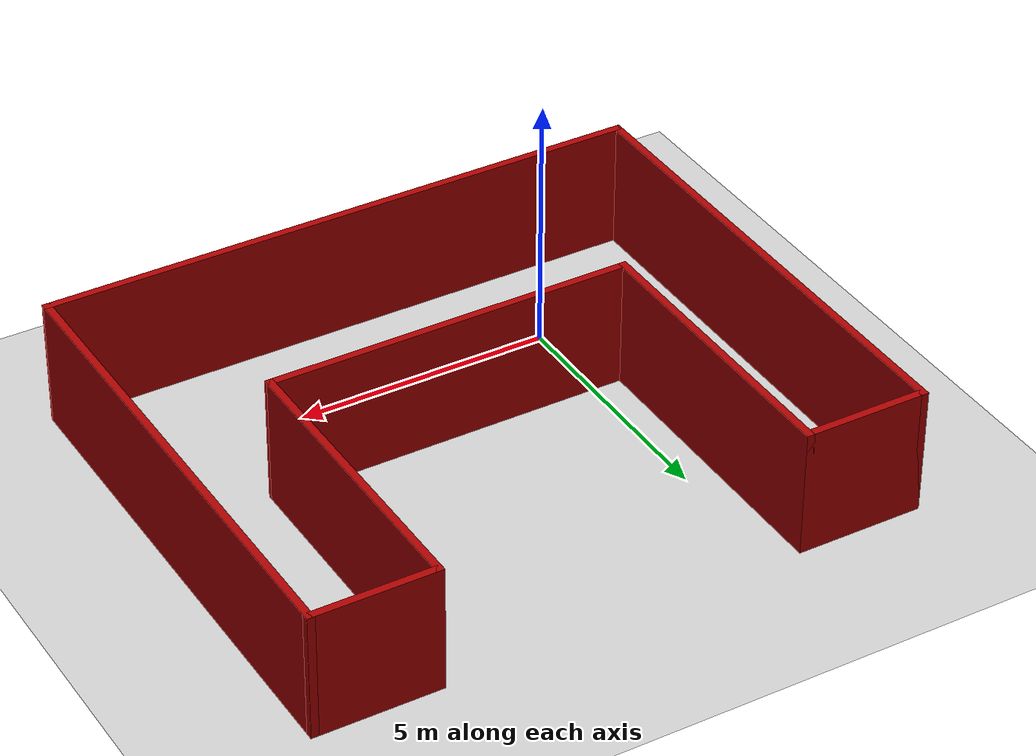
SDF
<sdf version="1.6">
 <world name="default">
  <light name="sun" type="directional">
   <pose>0 0 10 0 -0 0</pose>
   <diffuse>0.8 0.8 0.8 1</diffuse>
   <specular>0.2 0.2 0.2 1</specular>
   <attenuation>
    <range>1000</range>
    <constant>0.9</constant>
    <linear>0.01</linear>
    <quadratic>0.001</quadratic>
   </attenuation>
   <direction>-0.5 0.1 -0.9</direction>
  </light>
  <model name="ground_plane">
   <static>1</static>
   <link name="link">
    <collision name="collision">
     <geometry><plane><normal>0 0 1</normal><size>100 100</size></plane></geometry>
     <surface>
      <contact><collide_bitmask>65535</collide_bitmask></contact>
      <friction><ode><mu>100</mu><mu2>50</mu2></ode></friction>
     </surface>
    </collision>
    <visual name="visual">
     <cast_shadows>0</cast_shadows>
     <geometry><plane><normal>0 0 1</normal><size>100 100</size></plane></geometry>
     <material>
      <script><uri>file://media/materials/scripts/gazebo.material</uri><name>Gazebo/Grey</name></script>
     </material>
    </visual>
   </link>
  </model>
  <gravity>0 0 -9.8</gravity>
  <magnetic_field>6e-06 2.3e-05 -4.2e-05</magnetic_field>
  <atmosphere type="adiabatic"/>
  <physics name="default_physics" default="0" type="ode">
   <max_step_size>0.001</max_step_size>
   <real_time_factor>1</real_time_factor>
   <real_time_update_rate>1000</real_time_update_rate>
  </physics>
  <scene><ambient>0.4 0.4 0.4 1</ambient><background>0.7 0.7 0.7 1</background><shadows>1</shadows></scene>
  <spherical_coordinates>
   <surface_model>EARTH_WGS84</surface_model>
   <latitude_deg>0</latitude_deg>
   <longitude_deg>0</longitude_deg>
   <elevation>0</elevation>
   <heading_deg>0</heading_deg>
  </spherical_coordinates>
  <model name="U_buliding">
   <pose>2.925 2.73997 0 0 -0 0</pose>
   <link name="Wall_0">
    <collision name="Wall_0_Collision">
     <geometry><box><size>10 0.15 2.5</size></box></geometry>
     <pose>0 0 1.25 0 -0 0</pose>
    </collision>
    <visual name="Wall_0_Visual">
     <pose>0 0 1.25 0 -0 0</pose>
     <geometry><box><size>10 0.15 2.5</size></box></geometry>
     <material>
      <script><uri>file://media/materials/scripts/gazebo.material</uri><name>Gazebo/Grey</name></script>
      <ambient>0.666667 0 0 1</ambient>
     </material>
     <meta><layer>0</layer></meta>
    </visual>
    <pose>-5.925 -0.004969 0 0 -0 1.5708</pose>
   </link>
   <link name="Wall_10">
    <collision name="Wall_10_Collision">
     <geometry><box><size>2.5 0.15 2.5</size></box></geometry>
     <pose>0 0 1.25 0 -0 0</pose>
    </collision>
    <visual name="Wall_10_Visual">
     <pose>0 0 1.25 0 -0 0</pose>
     <geometry><box><size>2.5 0.15 2.5</size></box></geometry>
     <material>
      <script><uri>file://media/materials/scripts/gazebo.material</uri><name>Gazebo/Grey</name></script>
      <ambient>0.666667 0 0 1</ambient>
     </material>
     <meta><layer>0</layer></meta>
    </visual>
    <pose>4.75 4.93003 0 0 -0 3.14159</pose>
   </link>
   <link name="Wall_11">
    <collision name="Wall_11_Collision">
     <geometry><box><size>6 0.15 2.5</size></box></geometry>
     <pose>0 0 1.25 0 -0 0</pose>
    </collision>
    <visual name="Wall_11_Visual">
     <pose>0 0 1.25 0 -0 0</pose>
     <geometry><box><size>6 0.15 2.5</size></box></geometry>
     <material>
      <script><uri>file://media/materials/scripts/gazebo.material</uri><name>Gazebo/Grey</name></script>
      <ambient>0.666667 0 0 1</ambient>
     </material>
     <meta><layer>0</layer></meta>
    </visual>
    <pose>3.575 2.00503 0 0 0 -1.5708</pose>
   </link>
   <link name="Wall_13">
    <collision name="Wall_13_Collision">
     <geometry><box><size>7.30001 0.15 2.5</size></box></geometry>
     <pose>0 0 1.25 0 -0 0</pose>
    </collision>
    <visual name="Wall_13_Visual">
     <pose>0 0 1.25 0 -0 0</pose>
     <geometry><box><size>7.30001 0.15 2.5</size></box></geometry>
     <material>
      <script><uri>file://media/materials/scripts/gazebo.material</uri><name>Gazebo/Grey</name></script>
      <ambient>0.666667 0 0 1</ambient>
     </material>
     <meta><layer>0</layer></meta>
    </visual>
    <pose>0 -0.924968 0 0 -0 0.001399</pose>
   </link>
   <link name="Wall_2">
    <collision name="Wall_2_Collision">
     <geometry><box><size>12 0.15 2.5</size></box></geometry>
     <pose>0 0 1.25 0 -0 0</pose>
    </collision>
    <visual name="Wall_2_Visual">
     <pose>0 0 1.25 0 -0 0</pose>
     <geometry><box><size>12 0.15 2.5</size></box></geometry>
     <material>
      <script><uri>file://media/materials/scripts/gazebo.material</uri><name>Gazebo/Grey</name></script>
      <ambient>0.666667 0 0 1</ambient>
     </material>
     <meta><layer>0</layer></meta>
    </visual>
    <pose>0 -4.92497 0 0 -0 0.000844</pose>
   </link>
   <link name="Wall_5">
    <collision name="Wall_5_Collision">
     <geometry><box><size>10 0.15 2.5</size></box></geometry>
     <pose>0 0 1.25 0 -0 0</pose>
    </collision>
    <visual name="Wall_5_Visual">
     <pose>0 0 1.25 0 -0 0</pose>
     <geometry><box><size>10 0.15 2.5</size></box></geometry>
     <material>
      <script><uri>file://media/materials/scripts/gazebo.material</uri><name>Gazebo/Grey</name></script>
      <ambient>0.666667 0 0 1</ambient>
     </material>
     <meta><layer>0</layer></meta>
    </visual>
    <pose>5.925 0.005031 0 0 -0 1.5708</pose>
   </link>
   <link name="Wall_7">
    <collision name="Wall_7_Collision">
     <geometry><box><size>2.5 0.15 2.5</size></box></geometry>
     <pose>0 0 1.25 0 -0 0</pose>
    </collision>
    <visual name="Wall_7_Visual">
     <pose>0 0 1.25 0 -0 0</pose>
     <geometry><box><size>2.5 0.15 2.5</size></box></geometry>
     <material>
      <script><uri>file://media/materials/scripts/gazebo.material</uri><name>Gazebo/Grey</name></script>
      <ambient>0.666667 0 0 1</ambient>
     </material>
     <meta><layer>0</layer></meta>
    </visual>
    <pose>-4.75 4.92003 0 0 -0 0</pose>
   </link>
   <link name="Wall_8">
    <collision name="Wall_8_Collision">
     <geometry><box><size>6 0.15 2.5</size></box></geometry>
     <pose>0 0 1.25 0 -0 0</pose>
    </collision>
    <visual name="Wall_8_Visual">
     <pose>0 0 1.25 0 -0 0</pose>
     <geometry><box><size>6 0.15 2.5</size></box></geometry>
     <material>
      <script><uri>file://media/materials/scripts/gazebo.material</uri><name>Gazebo/Grey</name></script>
      <ambient>0.666667 0 0 1</ambient>
     </material>
     <meta><layer>0</layer></meta>
    </visual>
    <pose>-3.575 1.99503 0 0 0 -1.5708</pose>
   </link>
   <static>1</static>
  </model>
 </world>
</sdf>
